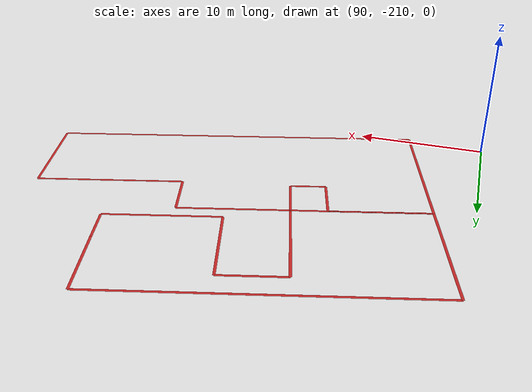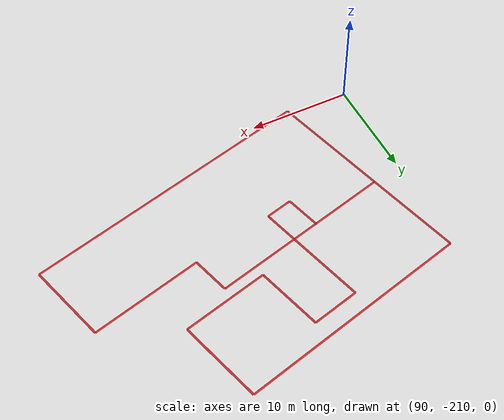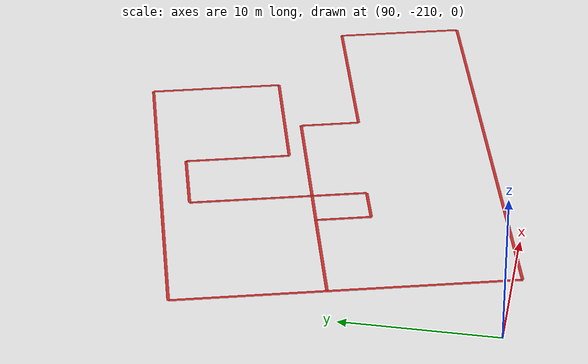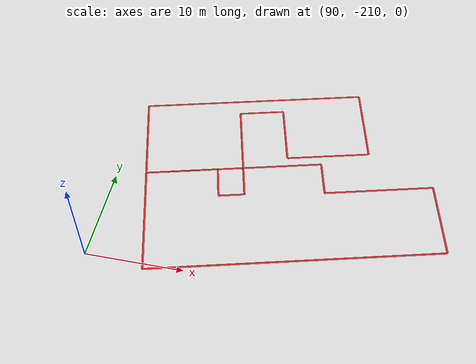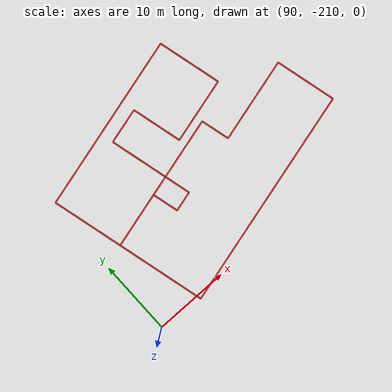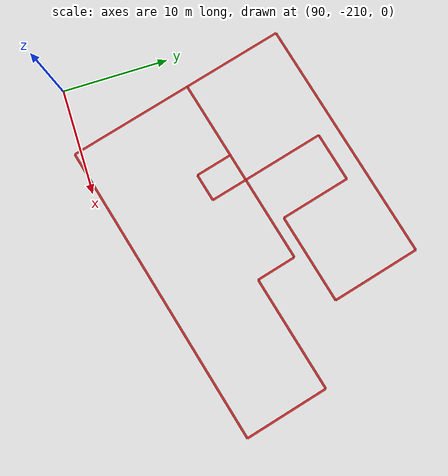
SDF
<sdf version="1.4">
 <world name="default">
  <include><uri>model://sun</uri></include>
  <model name="office_building_40955753">
   <static>true</static>
   <pose>105.507461649 -199.230155856 0.0 0 0 0</pose>
   <link name="office_building_40955753_0">
    <collision name="office_building_40955753_0">
     <geometry><box><size>12.0625516797 0.2 0</size></box></geometry>
    </collision>
    <visual name="office_building_40955753_0">
     <geometry><box><size>12.0625516797 0.2 0</size></box></geometry>
     <material>
      <script><uri>file://media/materials/scripts/gazebo.material</uri><name>Gazebo/Red</name></script>
     </material>
    </visual>
    <pose>-11.0212304672 -5.51084722709 0 0 0 1.82999137635</pose>
   </link>
   <link name="office_building_40955753_1">
    <collision name="office_building_40955753_1">
     <geometry><box><size>29.9474326352 0.2 0</size></box></geometry>
    </collision>
    <visual name="office_building_40955753_1">
     <geometry><box><size>29.9474326352 0.2 0</size></box></geometry>
     <material>
      <script><uri>file://media/materials/scripts/gazebo.material</uri><name>Gazebo/Red</name></script>
     </material>
    </visual>
    <pose>4.99647293732 -7.49655802056 0 0 0 -2.88196244528</pose>
   </link>
   <link name="office_building_40955753_2">
    <collision name="office_building_40955753_2">
     <geometry><box><size>8.20459727345 0.2 0</size></box></geometry>
    </collision>
    <visual name="office_building_40955753_2">
     <geometry><box><size>8.20459727345 0.2 0</size></box></geometry>
     <material>
      <script><uri>file://media/materials/scripts/gazebo.material</uri><name>Gazebo/Red</name></script>
     </material>
    </visual>
    <pose>18.4174060402 0.312939978714 0 0 0 -1.31172507689</pose>
   </link>
   <link name="office_building_40955753_3">
    <collision name="office_building_40955753_3">
     <geometry><box><size>11.3563629501 0.2 0</size></box></geometry>
    </collision>
    <visual name="office_building_40955753_3">
     <geometry><box><size>11.3563629501 0.2 0</size></box></geometry>
     <material>
      <script><uri>file://media/materials/scripts/gazebo.material</uri><name>Gazebo/Red</name></script>
     </material>
    </visual>
    <pose>11.8790509411 2.8188836584 0 0 0 0.259946122237</pose>
   </link>
   <link name="office_building_40955753_4">
    <collision name="office_building_40955753_4">
     <geometry><box><size>3.86769477329 0.2 0</size></box></geometry>
    </collision>
    <visual name="office_building_40955753_4">
     <geometry><box><size>3.86769477329 0.2 0</size></box></geometry>
     <material>
      <script><uri>file://media/materials/scripts/gazebo.material</uri><name>Gazebo/Red</name></script>
     </material>
    </visual>
    <pose>5.89118935223 3.22740150524 0 0 0 -1.30903508575</pose>
   </link>
   <link name="office_building_40955753_5">
    <collision name="office_building_40955753_5">
     <geometry><box><size>8.31854380996 0.2 0</size></box></geometry>
    </collision>
    <visual name="office_building_40955753_5">
     <geometry><box><size>8.31854380996 0.2 0</size></box></geometry>
     <material>
      <script><uri>file://media/materials/scripts/gazebo.material</uri><name>Gazebo/Red</name></script>
     </material>
    </visual>
    <pose>1.37108627616 4.02677934661 0 0 0 0.259832436833</pose>
   </link>
   <link name="office_building_40955753_6">
    <collision name="office_building_40955753_6">
     <geometry><box><size>3.5301336207 0.2 0</size></box></geometry>
    </collision>
    <visual name="office_building_40955753_6">
     <geometry><box><size>3.5301336207 0.2 0</size></box></geometry>
     <material>
      <script><uri>file://media/materials/scripts/gazebo.material</uri><name>Gazebo/Red</name></script>
     </material>
    </visual>
    <pose>-2.19816921793 1.25155125467 0 0 0 1.82882582685</pose>
   </link>
   <link name="office_building_40955753_7">
    <collision name="office_building_40955753_7">
     <geometry><box><size>2.69332821987 0.2 0</size></box></geometry>
    </collision>
    <visual name="office_building_40955753_7">
     <geometry><box><size>2.69332821987 0.2 0</size></box></geometry>
     <material>
      <script><uri>file://media/materials/scripts/gazebo.material</uri><name>Gazebo/Red</name></script>
     </material>
    </visual>
    <pose>-3.04873461306 -0.802914694592 0 0 0 0.26125354157</pose>
   </link>
   <link name="office_building_40955753_8">
    <collision name="office_building_40955753_8">
     <geometry><box><size>3.5399169718 0.2 0</size></box></geometry>
    </collision>
    <visual name="office_building_40955753_8">
     <geometry><box><size>3.5399169718 0.2 0</size></box></geometry>
     <material>
      <script><uri>file://media/materials/scripts/gazebo.material</uri><name>Gazebo/Red</name></script>
     </material>
    </visual>
    <pose>-4.80566471669 0.559472735343 0 0 0 -1.31024643807</pose>
   </link>
   <link name="office_building_40955753_9">
    <collision name="office_building_40955753_9">
     <geometry><box><size>7.56139681228 0.2 0</size></box></geometry>
    </collision>
    <visual name="office_building_40955753_9">
     <geometry><box><size>7.56139681228 0.2 0</size></box></geometry>
     <material>
      <script><uri>file://media/materials/scripts/gazebo.material</uri><name>Gazebo/Red</name></script>
     </material>
    </visual>
    <pose>-8.91434455088 1.29432795703 0 0 0 0.260936286766</pose>
   </link>
  </model>
  <model name="office_building_40955755">
   <static>true</static>
   <pose>103.140747332 -191.407553252 0.0 0 0 0</pose>
   <link name="office_building_40955755_0">
    <collision name="office_building_40955755_0">
     <geometry><box><size>9.69065135712 0.2 0</size></box></geometry>
    </collision>
    <visual name="office_building_40955755_0">
     <geometry><box><size>9.69065135712 0.2 0</size></box></geometry>
     <material>
      <script><uri>file://media/materials/scripts/gazebo.material</uri><name>Gazebo/Red</name></script>
     </material>
    </visual>
    <pose>-11.4459000235 -2.82114187444 0 0 0 1.83077782369</pose>
   </link>
   <link name="office_building_40955755_1">
    <collision name="office_building_40955755_1">
     <geometry><box><size>7.56139681228 0.2 0</size></box></geometry>
    </collision>
    <visual name="office_building_40955755_1">
     <geometry><box><size>7.56139681228 0.2 0</size></box></geometry>
     <material>
      <script><uri>file://media/materials/scripts/gazebo.material</uri><name>Gazebo/Red</name></script>
     </material>
    </visual>
    <pose>-6.54763023411 -6.52827464758 0 0 0 -2.88065636682</pose>
   </link>
   <link name="office_building_40955755_2">
    <collision name="office_building_40955755_2">
     <geometry><box><size>2.70223639857 0.2 0</size></box></geometry>
    </collision>
    <visual name="office_building_40955755_2">
     <geometry><box><size>2.70223639857 0.2 0</size></box></geometry>
     <material>
      <script><uri>file://media/materials/scripts/gazebo.material</uri><name>Gazebo/Red</name></script>
     </material>
    </visual>
    <pose>-1.58838500479 -5.20866392 0 0 0 -2.88396604973</pose>
   </link>
   <link name="office_building_40955755_3">
    <collision name="office_building_40955755_3">
     <geometry><box><size>7.88663464235 0.2 0</size></box></geometry>
    </collision>
    <visual name="office_building_40955755_3">
     <geometry><box><size>7.88663464235 0.2 0</size></box></geometry>
     <material>
      <script><uri>file://media/materials/scripts/gazebo.material</uri><name>Gazebo/Red</name></script>
     </material>
    </visual>
    <pose>-1.29386748709 -1.05317287462 0 0 0 -1.31125287515</pose>
   </link>
   <link name="office_building_40955755_4">
    <collision name="office_building_40955755_4">
     <geometry><box><size>4.78547451133 0.2 0</size></box></geometry>
    </collision>
    <visual name="office_building_40955755_4">
     <geometry><box><size>4.78547451133 0.2 0</size></box></geometry>
     <material>
      <script><uri>file://media/materials/scripts/gazebo.material</uri><name>Gazebo/Red</name></script>
     </material>
    </visual>
    <pose>0.0069552593223 3.37125617376 0 0 0 -2.88243238168</pose>
   </link>
   <link name="office_building_40955755_5">
    <collision name="office_building_40955755_5">
     <geometry><box><size>6.79648419497 0.2 0</size></box></geometry>
    </collision>
    <visual name="office_building_40955755_5">
     <geometry><box><size>6.79648419497 0.2 0</size></box></geometry>
     <material>
      <script><uri>file://media/materials/scripts/gazebo.material</uri><name>Gazebo/Red</name></script>
     </material>
    </visual>
    <pose>3.19278496925 0.700247075286 0 0 0 1.8306059338</pose>
   </link>
   <link name="office_building_40955755_6">
    <collision name="office_building_40955755_6">
     <geometry><box><size>8.7652849778 0.2 0</size></box></geometry>
    </collision>
    <visual name="office_building_40955755_6">
     <geometry><box><size>8.7652849778 0.2 0</size></box></geometry>
     <material>
      <script><uri>file://media/materials/scripts/gazebo.material</uri><name>Gazebo/Red</name></script>
     </material>
    </visual>
    <pose>8.3022680922 -1.46156587563 0 0 0 -2.88261055007</pose>
   </link>
   <link name="office_building_40955755_7">
    <collision name="office_building_40955755_7">
     <geometry><box><size>2.8329885562 0.2 0</size></box></geometry>
    </collision>
    <visual name="office_building_40955755_7">
     <geometry><box><size>2.8329885562 0.2 0</size></box></geometry>
     <material>
      <script><uri>file://media/materials/scripts/gazebo.material</uri><name>Gazebo/Red</name></script>
     </material>
    </visual>
    <pose>12.177322518 1.03042140719 0 0 0 -1.31278363537</pose>
   </link>
   <link name="office_building_40955755_8">
    <collision name="office_building_40955755_8">
     <geometry><box><size>5.77442070655 0.2 0</size></box></geometry>
    </collision>
    <visual name="office_building_40955755_8">
     <geometry><box><size>5.77442070655 0.2 0</size></box></geometry>
     <material>
      <script><uri>file://media/materials/scripts/gazebo.material</uri><name>Gazebo/Red</name></script>
     </material>
    </visual>
    <pose>11.0707878681 5.18943782155 0 0 0 -1.30977223413</pose>
   </link>
   <link name="office_building_40955755_9">
    <collision name="office_building_40955755_9">
     <geometry><box><size>23.8162199511 0.2 0</size></box></geometry>
    </collision>
    <visual name="office_building_40955755_9">
     <geometry><box><size>23.8162199511 0.2 0</size></box></geometry>
     <material>
      <script><uri>file://media/materials/scripts/gazebo.material</uri><name>Gazebo/Red</name></script>
     </material>
    </visual>
    <pose>-1.1828835748 4.92010136497 0 0 0 0.259774294526</pose>
   </link>
  </model>
 </world>
</sdf>
